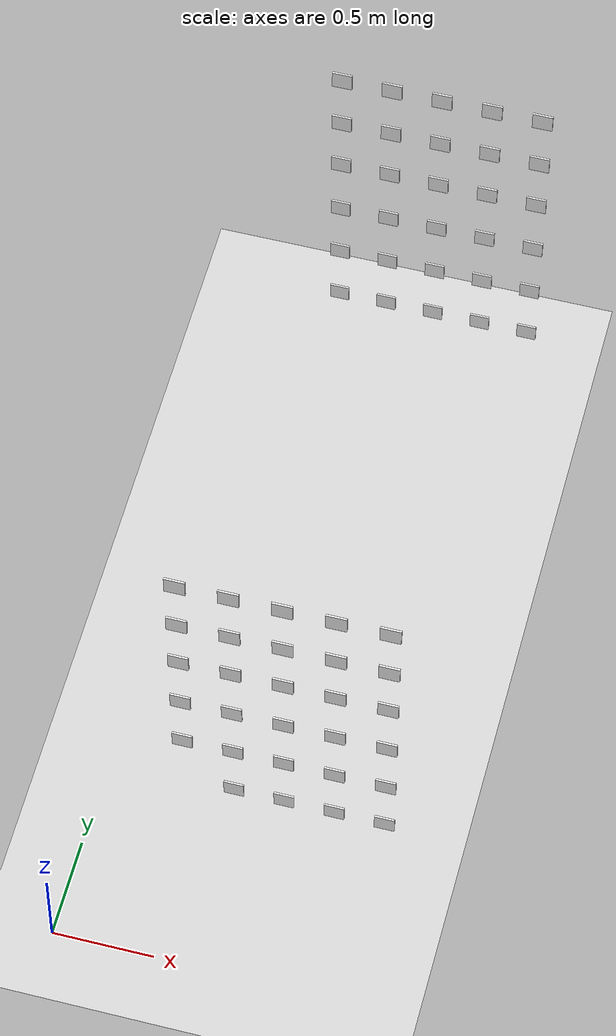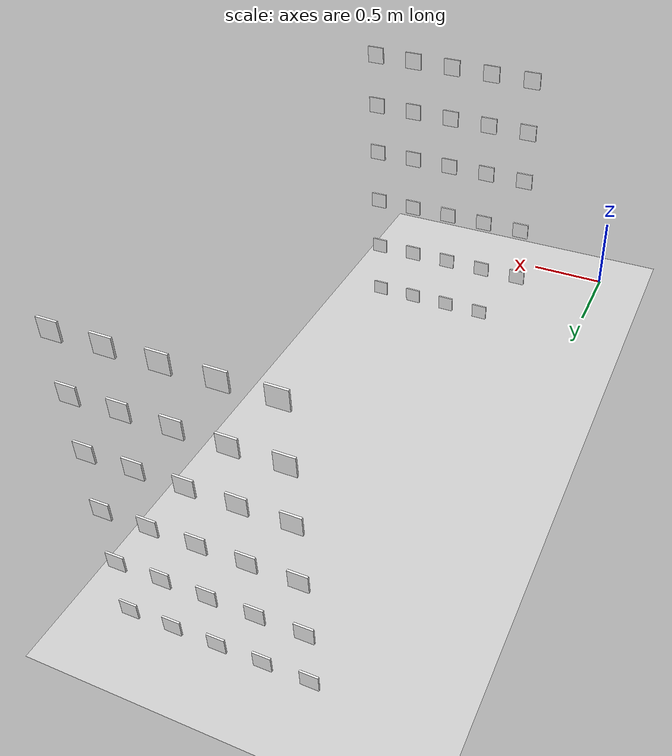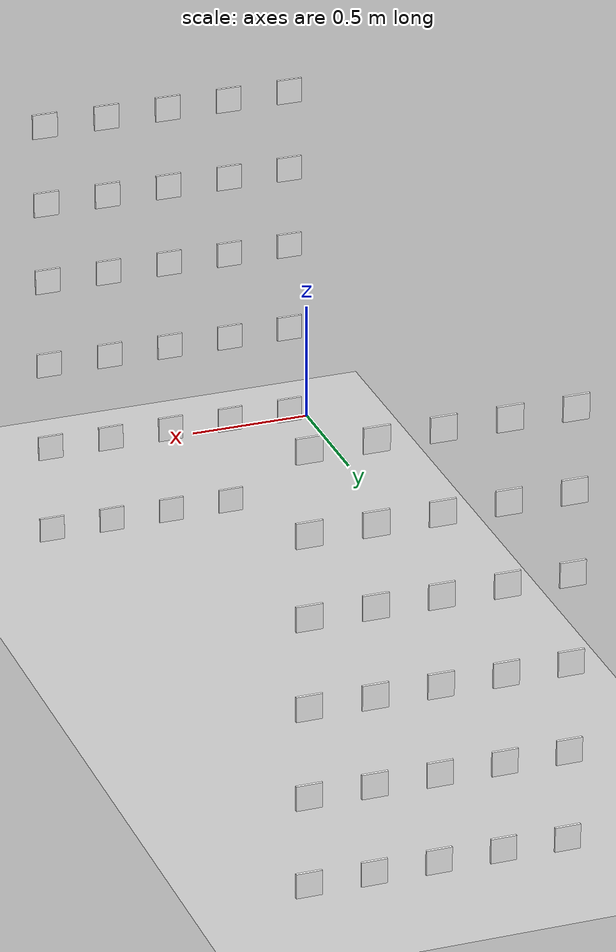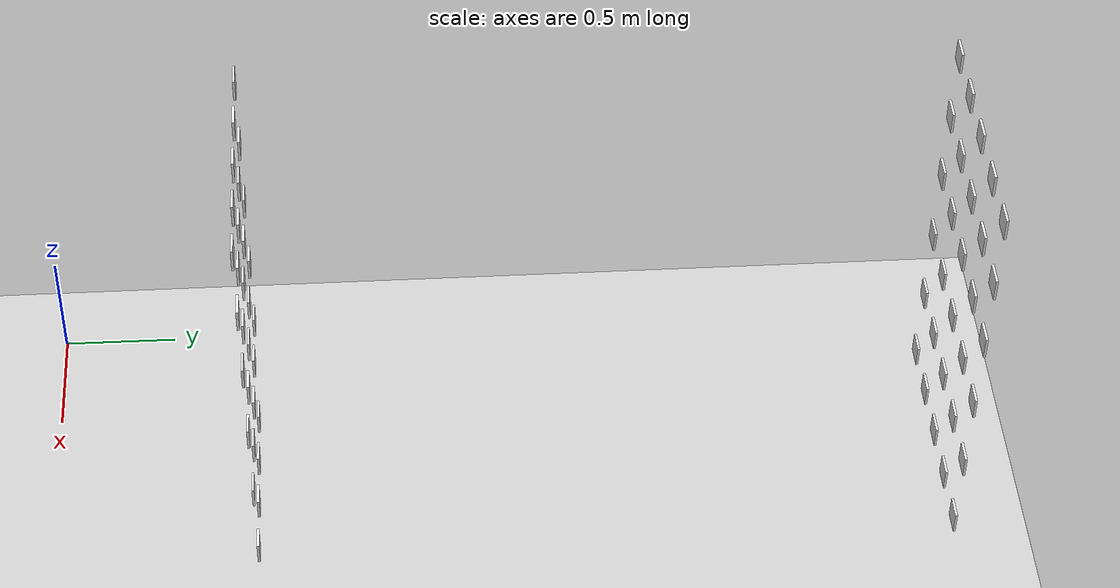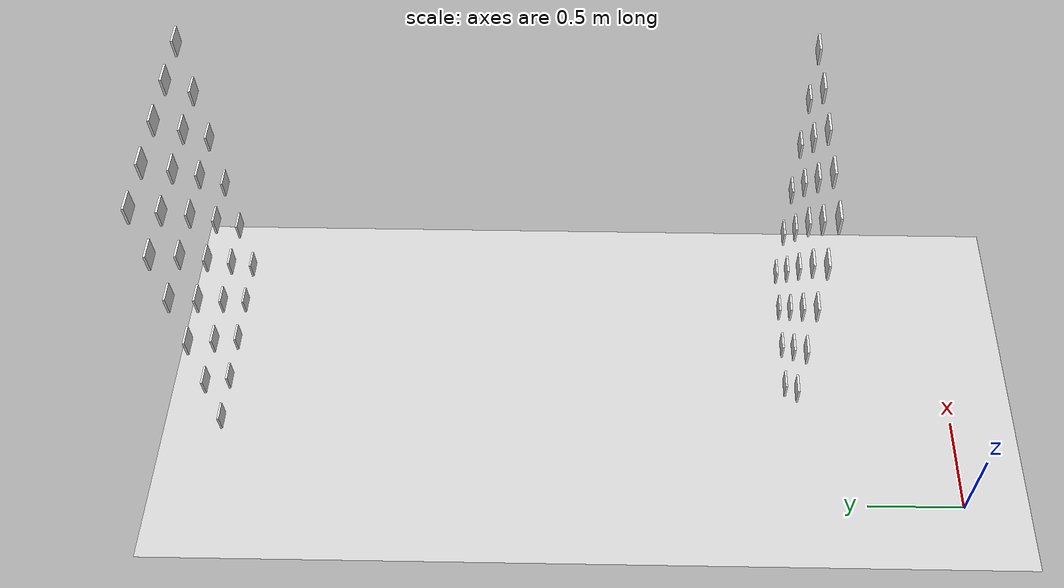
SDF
<sdf version="1.6">
 <world name="default">
  <include><uri>model://ground_plane</uri></include>
  <include><uri>model://sun</uri></include>
  <model name="stag_r1c2_l1_m1">
   <static>true</static>
   <pose>1.4 0.9 0.146 1.5708 0 0</pose>
   <link name="marker_link">
    <collision name="collision"><geometry><box><size>0.1 0.1 0.01</size></box></geometry></collision>
    <visual name="visual">
     <geometry><box><size>0.1 0.1 0.01</size></box></geometry>
     <material>
      <script>
       <uri>model://STag_marker/materials/scripts</uri>
       <uri>model://STag_marker/materials/textures</uri>
       <name>STagMarker/marker_02234</name>
      </script>
      <ambient>1 1 1 1</ambient>
      <diffuse>1 1 1 1</diffuse>
     </material>
     <pose>0 0 0.001 0 0 0</pose>
    </visual>
   </link>
  </model>
  <model name="stag_r1c2_l1_m2">
   <static>true</static>
   <pose>1.15 0.9 0.146 1.5708 0 0</pose>
   <link name="marker_link">
    <collision name="collision"><geometry><box><size>0.1 0.1 0.01</size></box></geometry></collision>
    <visual name="visual">
     <geometry><box><size>0.1 0.1 0.01</size></box></geometry>
     <material>
      <script>
       <uri>model://STag_marker/materials/scripts</uri>
       <uri>model://STag_marker/materials/textures</uri>
       <name>STagMarker/marker_02269</name>
      </script>
      <ambient>1 1 1 1</ambient>
      <diffuse>1 1 1 1</diffuse>
     </material>
     <pose>0 0 0.001 0 0 0</pose>
    </visual>
   </link>
  </model>
  <model name="stag_r1c2_l1_m3">
   <static>true</static>
   <pose>0.8999999999999999 0.9 0.146 1.5708 0 0</pose>
   <link name="marker_link">
    <collision name="collision"><geometry><box><size>0.1 0.1 0.01</size></box></geometry></collision>
    <visual name="visual">
     <geometry><box><size>0.1 0.1 0.01</size></box></geometry>
     <material>
      <script>
       <uri>model://STag_marker/materials/scripts</uri>
       <uri>model://STag_marker/materials/textures</uri>
       <name>STagMarker/marker_02275</name>
      </script>
      <ambient>1 1 1 1</ambient>
      <diffuse>1 1 1 1</diffuse>
     </material>
     <pose>0 0 0.001 0 0 0</pose>
    </visual>
   </link>
  </model>
  <model name="stag_r1c2_l1_m4">
   <static>true</static>
   <pose>0.6499999999999999 0.9 0.146 1.5708 0 0</pose>
   <link name="marker_link">
    <collision name="collision"><geometry><box><size>0.1 0.1 0.01</size></box></geometry></collision>
    <visual name="visual">
     <geometry><box><size>0.1 0.1 0.01</size></box></geometry>
     <material>
      <script>
       <uri>model://STag_marker/materials/scripts</uri>
       <uri>model://STag_marker/materials/textures</uri>
       <name>STagMarker/marker_02288</name>
      </script>
      <ambient>1 1 1 1</ambient>
      <diffuse>1 1 1 1</diffuse>
     </material>
     <pose>0 0 0.001 0 0 0</pose>
    </visual>
   </link>
  </model>
  <model name="stag_r1c2_l2_m1">
   <static>true</static>
   <pose>1.4 0.9 0.506 1.5708 0 0</pose>
   <link name="marker_link">
    <collision name="collision"><geometry><box><size>0.1 0.1 0.01</size></box></geometry></collision>
    <visual name="visual">
     <geometry><box><size>0.1 0.1 0.01</size></box></geometry>
     <material>
      <script>
       <uri>model://STag_marker/materials/scripts</uri>
       <uri>model://STag_marker/materials/textures</uri>
       <name>STagMarker/marker_02365</name>
      </script>
      <ambient>1 1 1 1</ambient>
      <diffuse>1 1 1 1</diffuse>
     </material>
     <pose>0 0 0.001 0 0 0</pose>
    </visual>
   </link>
  </model>
  <model name="stag_r1c2_l2_m2">
   <static>true</static>
   <pose>1.15 0.9 0.506 1.5708 0 0</pose>
   <link name="marker_link">
    <collision name="collision"><geometry><box><size>0.1 0.1 0.01</size></box></geometry></collision>
    <visual name="visual">
     <geometry><box><size>0.1 0.1 0.01</size></box></geometry>
     <material>
      <script>
       <uri>model://STag_marker/materials/scripts</uri>
       <uri>model://STag_marker/materials/textures</uri>
       <name>STagMarker/marker_00219</name>
      </script>
      <ambient>1 1 1 1</ambient>
      <diffuse>1 1 1 1</diffuse>
     </material>
     <pose>0 0 0.001 0 0 0</pose>
    </visual>
   </link>
  </model>
  <model name="stag_r1c2_l2_m3">
   <static>true</static>
   <pose>0.8999999999999999 0.9 0.506 1.5708 0 0</pose>
   <link name="marker_link">
    <collision name="collision"><geometry><box><size>0.1 0.1 0.01</size></box></geometry></collision>
    <visual name="visual">
     <geometry><box><size>0.1 0.1 0.01</size></box></geometry>
     <material>
      <script>
       <uri>model://STag_marker/materials/scripts</uri>
       <uri>model://STag_marker/materials/textures</uri>
       <name>STagMarker/marker_00261</name>
      </script>
      <ambient>1 1 1 1</ambient>
      <diffuse>1 1 1 1</diffuse>
     </material>
     <pose>0 0 0.001 0 0 0</pose>
    </visual>
   </link>
  </model>
  <model name="stag_r1c2_l2_m4">
   <static>true</static>
   <pose>0.6499999999999999 0.9 0.506 1.5708 0 0</pose>
   <link name="marker_link">
    <collision name="collision"><geometry><box><size>0.1 0.1 0.01</size></box></geometry></collision>
    <visual name="visual">
     <geometry><box><size>0.1 0.1 0.01</size></box></geometry>
     <material>
      <script>
       <uri>model://STag_marker/materials/scripts</uri>
       <uri>model://STag_marker/materials/textures</uri>
       <name>STagMarker/marker_00426</name>
      </script>
      <ambient>1 1 1 1</ambient>
      <diffuse>1 1 1 1</diffuse>
     </material>
     <pose>0 0 0.001 0 0 0</pose>
    </visual>
   </link>
  </model>
  <model name="stag_r1c2_l2_m5">
   <static>true</static>
   <pose>0.3999999999999999 0.9 0.506 1.5708 0 0</pose>
   <link name="marker_link">
    <collision name="collision"><geometry><box><size>0.1 0.1 0.01</size></box></geometry></collision>
    <visual name="visual">
     <geometry><box><size>0.1 0.1 0.01</size></box></geometry>
     <material>
      <script>
       <uri>model://STag_marker/materials/scripts</uri>
       <uri>model://STag_marker/materials/textures</uri>
       <name>STagMarker/marker_00519</name>
      </script>
      <ambient>1 1 1 1</ambient>
      <diffuse>1 1 1 1</diffuse>
     </material>
     <pose>0 0 0.001 0 0 0</pose>
    </visual>
   </link>
  </model>
  <model name="stag_r1c2_l3_m1">
   <static>true</static>
   <pose>1.4 0.9 0.867 1.5708 0 0</pose>
   <link name="marker_link">
    <collision name="collision"><geometry><box><size>0.1 0.1 0.01</size></box></geometry></collision>
    <visual name="visual">
     <geometry><box><size>0.1 0.1 0.01</size></box></geometry>
     <material>
      <script>
       <uri>model://STag_marker/materials/scripts</uri>
       <uri>model://STag_marker/materials/textures</uri>
       <name>STagMarker/marker_00525</name>
      </script>
      <ambient>1 1 1 1</ambient>
      <diffuse>1 1 1 1</diffuse>
     </material>
     <pose>0 0 0.001 0 0 0</pose>
    </visual>
   </link>
  </model>
  <model name="stag_r1c2_l3_m2">
   <static>true</static>
   <pose>1.15 0.9 0.867 1.5708 0 0</pose>
   <link name="marker_link">
    <collision name="collision"><geometry><box><size>0.1 0.1 0.01</size></box></geometry></collision>
    <visual name="visual">
     <geometry><box><size>0.1 0.1 0.01</size></box></geometry>
     <material>
      <script>
       <uri>model://STag_marker/materials/scripts</uri>
       <uri>model://STag_marker/materials/textures</uri>
       <name>STagMarker/marker_00526</name>
      </script>
      <ambient>1 1 1 1</ambient>
      <diffuse>1 1 1 1</diffuse>
     </material>
     <pose>0 0 0.001 0 0 0</pose>
    </visual>
   </link>
  </model>
  <model name="stag_r1c2_l3_m3">
   <static>true</static>
   <pose>0.8999999999999999 0.9 0.867 1.5708 0 0</pose>
   <link name="marker_link">
    <collision name="collision"><geometry><box><size>0.1 0.1 0.01</size></box></geometry></collision>
    <visual name="visual">
     <geometry><box><size>0.1 0.1 0.01</size></box></geometry>
     <material>
      <script>
       <uri>model://STag_marker/materials/scripts</uri>
       <uri>model://STag_marker/materials/textures</uri>
       <name>STagMarker/marker_00537</name>
      </script>
      <ambient>1 1 1 1</ambient>
      <diffuse>1 1 1 1</diffuse>
     </material>
     <pose>0 0 0.001 0 0 0</pose>
    </visual>
   </link>
  </model>
  <model name="stag_r1c2_l3_m4">
   <static>true</static>
   <pose>0.6499999999999999 0.9 0.867 1.5708 0 0</pose>
   <link name="marker_link">
    <collision name="collision"><geometry><box><size>0.1 0.1 0.01</size></box></geometry></collision>
    <visual name="visual">
     <geometry><box><size>0.1 0.1 0.01</size></box></geometry>
     <material>
      <script>
       <uri>model://STag_marker/materials/scripts</uri>
       <uri>model://STag_marker/materials/textures</uri>
       <name>STagMarker/marker_00563</name>
      </script>
      <ambient>1 1 1 1</ambient>
      <diffuse>1 1 1 1</diffuse>
     </material>
     <pose>0 0 0.001 0 0 0</pose>
    </visual>
   </link>
  </model>
  <model name="stag_r1c2_l3_m5">
   <static>true</static>
   <pose>0.3999999999999999 0.9 0.867 1.5708 0 0</pose>
   <link name="marker_link">
    <collision name="collision"><geometry><box><size>0.1 0.1 0.01</size></box></geometry></collision>
    <visual name="visual">
     <geometry><box><size>0.1 0.1 0.01</size></box></geometry>
     <material>
      <script>
       <uri>model://STag_marker/materials/scripts</uri>
       <uri>model://STag_marker/materials/textures</uri>
       <name>STagMarker/marker_00578</name>
      </script>
      <ambient>1 1 1 1</ambient>
      <diffuse>1 1 1 1</diffuse>
     </material>
     <pose>0 0 0.001 0 0 0</pose>
    </visual>
   </link>
  </model>
  <model name="stag_r1c2_l4_m1">
   <static>true</static>
   <pose>1.4 0.9 1.227 1.5708 0 0</pose>
   <link name="marker_link">
    <collision name="collision"><geometry><box><size>0.1 0.1 0.01</size></box></geometry></collision>
    <visual name="visual">
     <geometry><box><size>0.1 0.1 0.01</size></box></geometry>
     <material>
      <script>
       <uri>model://STag_marker/materials/scripts</uri>
       <uri>model://STag_marker/materials/textures</uri>
       <name>STagMarker/marker_00679</name>
      </script>
      <ambient>1 1 1 1</ambient>
      <diffuse>1 1 1 1</diffuse>
     </material>
     <pose>0 0 0.001 0 0 0</pose>
    </visual>
   </link>
  </model>
  <model name="stag_r1c2_l4_m2">
   <static>true</static>
   <pose>1.15 0.9 1.227 1.5708 0 0</pose>
   <link name="marker_link">
    <collision name="collision"><geometry><box><size>0.1 0.1 0.01</size></box></geometry></collision>
    <visual name="visual">
     <geometry><box><size>0.1 0.1 0.01</size></box></geometry>
     <material>
      <script>
       <uri>model://STag_marker/materials/scripts</uri>
       <uri>model://STag_marker/materials/textures</uri>
       <name>STagMarker/marker_00800</name>
      </script>
      <ambient>1 1 1 1</ambient>
      <diffuse>1 1 1 1</diffuse>
     </material>
     <pose>0 0 0.001 0 0 0</pose>
    </visual>
   </link>
  </model>
  <model name="stag_r1c2_l4_m3">
   <static>true</static>
   <pose>0.8999999999999999 0.9 1.227 1.5708 0 0</pose>
   <link name="marker_link">
    <collision name="collision"><geometry><box><size>0.1 0.1 0.01</size></box></geometry></collision>
    <visual name="visual">
     <geometry><box><size>0.1 0.1 0.01</size></box></geometry>
     <material>
      <script>
       <uri>model://STag_marker/materials/scripts</uri>
       <uri>model://STag_marker/materials/textures</uri>
       <name>STagMarker/marker_00848</name>
      </script>
      <ambient>1 1 1 1</ambient>
      <diffuse>1 1 1 1</diffuse>
     </material>
     <pose>0 0 0.001 0 0 0</pose>
    </visual>
   </link>
  </model>
  <model name="stag_r1c2_l4_m4">
   <static>true</static>
   <pose>0.6499999999999999 0.9 1.227 1.5708 0 0</pose>
   <link name="marker_link">
    <collision name="collision"><geometry><box><size>0.1 0.1 0.01</size></box></geometry></collision>
    <visual name="visual">
     <geometry><box><size>0.1 0.1 0.01</size></box></geometry>
     <material>
      <script>
       <uri>model://STag_marker/materials/scripts</uri>
       <uri>model://STag_marker/materials/textures</uri>
       <name>STagMarker/marker_01138</name>
      </script>
      <ambient>1 1 1 1</ambient>
      <diffuse>1 1 1 1</diffuse>
     </material>
     <pose>0 0 0.001 0 0 0</pose>
    </visual>
   </link>
  </model>
  <model name="stag_r1c2_l4_m5">
   <static>true</static>
   <pose>0.3999999999999999 0.9 1.227 1.5708 0 0</pose>
   <link name="marker_link">
    <collision name="collision"><geometry><box><size>0.1 0.1 0.01</size></box></geometry></collision>
    <visual name="visual">
     <geometry><box><size>0.1 0.1 0.01</size></box></geometry>
     <material>
      <script>
       <uri>model://STag_marker/materials/scripts</uri>
       <uri>model://STag_marker/materials/textures</uri>
       <name>STagMarker/marker_01181</name>
      </script>
      <ambient>1 1 1 1</ambient>
      <diffuse>1 1 1 1</diffuse>
     </material>
     <pose>0 0 0.001 0 0 0</pose>
    </visual>
   </link>
  </model>
  <model name="stag_r1c2_l5_m1">
   <static>true</static>
   <pose>1.4 0.9 1.556 1.5708 0 0</pose>
   <link name="marker_link">
    <collision name="collision"><geometry><box><size>0.1 0.1 0.01</size></box></geometry></collision>
    <visual name="visual">
     <geometry><box><size>0.1 0.1 0.01</size></box></geometry>
     <material>
      <script>
       <uri>model://STag_marker/materials/scripts</uri>
       <uri>model://STag_marker/materials/textures</uri>
       <name>STagMarker/marker_01311</name>
      </script>
      <ambient>1 1 1 1</ambient>
      <diffuse>1 1 1 1</diffuse>
     </material>
     <pose>0 0 0.001 0 0 0</pose>
    </visual>
   </link>
  </model>
  <model name="stag_r1c2_l5_m2">
   <static>true</static>
   <pose>1.15 0.9 1.556 1.5708 0 0</pose>
   <link name="marker_link">
    <collision name="collision"><geometry><box><size>0.1 0.1 0.01</size></box></geometry></collision>
    <visual name="visual">
     <geometry><box><size>0.1 0.1 0.01</size></box></geometry>
     <material>
      <script>
       <uri>model://STag_marker/materials/scripts</uri>
       <uri>model://STag_marker/materials/textures</uri>
       <name>STagMarker/marker_01391</name>
      </script>
      <ambient>1 1 1 1</ambient>
      <diffuse>1 1 1 1</diffuse>
     </material>
     <pose>0 0 0.001 0 0 0</pose>
    </visual>
   </link>
  </model>
  <model name="stag_r1c2_l5_m3">
   <static>true</static>
   <pose>0.8999999999999999 0.9 1.556 1.5708 0 0</pose>
   <link name="marker_link">
    <collision name="collision"><geometry><box><size>0.1 0.1 0.01</size></box></geometry></collision>
    <visual name="visual">
     <geometry><box><size>0.1 0.1 0.01</size></box></geometry>
     <material>
      <script>
       <uri>model://STag_marker/materials/scripts</uri>
       <uri>model://STag_marker/materials/textures</uri>
       <name>STagMarker/marker_01396</name>
      </script>
      <ambient>1 1 1 1</ambient>
      <diffuse>1 1 1 1</diffuse>
     </material>
     <pose>0 0 0.001 0 0 0</pose>
    </visual>
   </link>
  </model>
  <model name="stag_r1c2_l5_m4">
   <static>true</static>
   <pose>0.6499999999999999 0.9 1.556 1.5708 0 0</pose>
   <link name="marker_link">
    <collision name="collision"><geometry><box><size>0.1 0.1 0.01</size></box></geometry></collision>
    <visual name="visual">
     <geometry><box><size>0.1 0.1 0.01</size></box></geometry>
     <material>
      <script>
       <uri>model://STag_marker/materials/scripts</uri>
       <uri>model://STag_marker/materials/textures</uri>
       <name>STagMarker/marker_01451</name>
      </script>
      <ambient>1 1 1 1</ambient>
      <diffuse>1 1 1 1</diffuse>
     </material>
     <pose>0 0 0.001 0 0 0</pose>
    </visual>
   </link>
  </model>
  <model name="stag_r1c2_l5_m5">
   <static>true</static>
   <pose>0.3999999999999999 0.9 1.556 1.5708 0 0</pose>
   <link name="marker_link">
    <collision name="collision"><geometry><box><size>0.1 0.1 0.01</size></box></geometry></collision>
    <visual name="visual">
     <geometry><box><size>0.1 0.1 0.01</size></box></geometry>
     <material>
      <script>
       <uri>model://STag_marker/materials/scripts</uri>
       <uri>model://STag_marker/materials/textures</uri>
       <name>STagMarker/marker_01509</name>
      </script>
      <ambient>1 1 1 1</ambient>
      <diffuse>1 1 1 1</diffuse>
     </material>
     <pose>0 0 0.001 0 0 0</pose>
    </visual>
   </link>
  </model>
  <model name="stag_r1c2_l6_m1">
   <static>true</static>
   <pose>1.4 0.9 1.886 1.5708 0 0</pose>
   <link name="marker_link">
    <collision name="collision"><geometry><box><size>0.1 0.1 0.01</size></box></geometry></collision>
    <visual name="visual">
     <geometry><box><size>0.1 0.1 0.01</size></box></geometry>
     <material>
      <script>
       <uri>model://STag_marker/materials/scripts</uri>
       <uri>model://STag_marker/materials/textures</uri>
       <name>STagMarker/marker_01579</name>
      </script>
      <ambient>1 1 1 1</ambient>
      <diffuse>1 1 1 1</diffuse>
     </material>
     <pose>0 0 0.001 0 0 0</pose>
    </visual>
   </link>
  </model>
  <model name="stag_r1c2_l6_m2">
   <static>true</static>
   <pose>1.15 0.9 1.886 1.5708 0 0</pose>
   <link name="marker_link">
    <collision name="collision"><geometry><box><size>0.1 0.1 0.01</size></box></geometry></collision>
    <visual name="visual">
     <geometry><box><size>0.1 0.1 0.01</size></box></geometry>
     <material>
      <script>
       <uri>model://STag_marker/materials/scripts</uri>
       <uri>model://STag_marker/materials/textures</uri>
       <name>STagMarker/marker_01603</name>
      </script>
      <ambient>1 1 1 1</ambient>
      <diffuse>1 1 1 1</diffuse>
     </material>
     <pose>0 0 0.001 0 0 0</pose>
    </visual>
   </link>
  </model>
  <model name="stag_r1c2_l6_m3">
   <static>true</static>
   <pose>0.8999999999999999 0.9 1.886 1.5708 0 0</pose>
   <link name="marker_link">
    <collision name="collision"><geometry><box><size>0.1 0.1 0.01</size></box></geometry></collision>
    <visual name="visual">
     <geometry><box><size>0.1 0.1 0.01</size></box></geometry>
     <material>
      <script>
       <uri>model://STag_marker/materials/scripts</uri>
       <uri>model://STag_marker/materials/textures</uri>
       <name>STagMarker/marker_01630</name>
      </script>
      <ambient>1 1 1 1</ambient>
      <diffuse>1 1 1 1</diffuse>
     </material>
     <pose>0 0 0.001 0 0 0</pose>
    </visual>
   </link>
  </model>
  <model name="stag_r1c2_l6_m4">
   <static>true</static>
   <pose>0.6499999999999999 0.9 1.886 1.5708 0 0</pose>
   <link name="marker_link">
    <collision name="collision"><geometry><box><size>0.1 0.1 0.01</size></box></geometry></collision>
    <visual name="visual">
     <geometry><box><size>0.1 0.1 0.01</size></box></geometry>
     <material>
      <script>
       <uri>model://STag_marker/materials/scripts</uri>
       <uri>model://STag_marker/materials/textures</uri>
       <name>STagMarker/marker_01654</name>
      </script>
      <ambient>1 1 1 1</ambient>
      <diffuse>1 1 1 1</diffuse>
     </material>
     <pose>0 0 0.001 0 0 0</pose>
    </visual>
   </link>
  </model>
  <model name="stag_r1c2_l6_m5">
   <static>true</static>
   <pose>0.3999999999999999 0.9 1.886 1.5708 0 0</pose>
   <link name="marker_link">
    <collision name="collision"><geometry><box><size>0.1 0.1 0.01</size></box></geometry></collision>
    <visual name="visual">
     <geometry><box><size>0.1 0.1 0.01</size></box></geometry>
     <material>
      <script>
       <uri>model://STag_marker/materials/scripts</uri>
       <uri>model://STag_marker/materials/textures</uri>
       <name>STagMarker/marker_01690</name>
      </script>
      <ambient>1 1 1 1</ambient>
      <diffuse>1 1 1 1</diffuse>
     </material>
     <pose>0 0 0.001 0 0 0</pose>
    </visual>
   </link>
  </model>
  <model name="stag_r2c2_l1_m1">
   <static>true</static>
   <pose>1.4 3.9 0.146 1.5708 0 0</pose>
   <link name="marker_link">
    <collision name="collision"><geometry><box><size>0.1 0.1 0.01</size></box></geometry></collision>
    <visual name="visual">
     <geometry><box><size>0.1 0.1 0.01</size></box></geometry>
     <material>
      <script>
       <uri>model://STag_marker/materials/scripts</uri>
       <uri>model://STag_marker/materials/textures</uri>
       <name>STagMarker/marker_01138</name>
      </script>
      <ambient>1 1 1 1</ambient>
      <diffuse>1 1 1 1</diffuse>
     </material>
     <pose>0 0 0.001 0 0 0</pose>
    </visual>
   </link>
  </model>
  <model name="stag_r2c2_l1_m2">
   <static>true</static>
   <pose>1.15 3.9 0.146 1.5708 0 0</pose>
   <link name="marker_link">
    <collision name="collision"><geometry><box><size>0.1 0.1 0.01</size></box></geometry></collision>
    <visual name="visual">
     <geometry><box><size>0.1 0.1 0.01</size></box></geometry>
     <material>
      <script>
       <uri>model://STag_marker/materials/scripts</uri>
       <uri>model://STag_marker/materials/textures</uri>
       <name>STagMarker/marker_01181</name>
      </script>
      <ambient>1 1 1 1</ambient>
      <diffuse>1 1 1 1</diffuse>
     </material>
     <pose>0 0 0.001 0 0 0</pose>
    </visual>
   </link>
  </model>
  <model name="stag_r2c2_l1_m3">
   <static>true</static>
   <pose>0.8999999999999999 3.9 0.146 1.5708 0 0</pose>
   <link name="marker_link">
    <collision name="collision"><geometry><box><size>0.1 0.1 0.01</size></box></geometry></collision>
    <visual name="visual">
     <geometry><box><size>0.1 0.1 0.01</size></box></geometry>
     <material>
      <script>
       <uri>model://STag_marker/materials/scripts</uri>
       <uri>model://STag_marker/materials/textures</uri>
       <name>STagMarker/marker_01311</name>
      </script>
      <ambient>1 1 1 1</ambient>
      <diffuse>1 1 1 1</diffuse>
     </material>
     <pose>0 0 0.001 0 0 0</pose>
    </visual>
   </link>
  </model>
  <model name="stag_r2c2_l1_m4">
   <static>true</static>
   <pose>0.6499999999999999 3.9 0.146 1.5708 0 0</pose>
   <link name="marker_link">
    <collision name="collision"><geometry><box><size>0.1 0.1 0.01</size></box></geometry></collision>
    <visual name="visual">
     <geometry><box><size>0.1 0.1 0.01</size></box></geometry>
     <material>
      <script>
       <uri>model://STag_marker/materials/scripts</uri>
       <uri>model://STag_marker/materials/textures</uri>
       <name>STagMarker/marker_01391</name>
      </script>
      <ambient>1 1 1 1</ambient>
      <diffuse>1 1 1 1</diffuse>
     </material>
     <pose>0 0 0.001 0 0 0</pose>
    </visual>
   </link>
  </model>
  <model name="stag_r2c2_l1_m5">
   <static>true</static>
   <pose>0.3999999999999999 3.9 0.146 1.5708 0 0</pose>
   <link name="marker_link">
    <collision name="collision"><geometry><box><size>0.1 0.1 0.01</size></box></geometry></collision>
    <visual name="visual">
     <geometry><box><size>0.1 0.1 0.01</size></box></geometry>
     <material>
      <script>
       <uri>model://STag_marker/materials/scripts</uri>
       <uri>model://STag_marker/materials/textures</uri>
       <name>STagMarker/marker_01396</name>
      </script>
      <ambient>1 1 1 1</ambient>
      <diffuse>1 1 1 1</diffuse>
     </material>
     <pose>0 0 0.001 0 0 0</pose>
    </visual>
   </link>
  </model>
  <model name="stag_r2c2_l2_m1">
   <static>true</static>
   <pose>1.4 3.9 0.506 1.5708 0 0</pose>
   <link name="marker_link">
    <collision name="collision"><geometry><box><size>0.1 0.1 0.01</size></box></geometry></collision>
    <visual name="visual">
     <geometry><box><size>0.1 0.1 0.01</size></box></geometry>
     <material>
      <script>
       <uri>model://STag_marker/materials/scripts</uri>
       <uri>model://STag_marker/materials/textures</uri>
       <name>STagMarker/marker_01451</name>
      </script>
      <ambient>1 1 1 1</ambient>
      <diffuse>1 1 1 1</diffuse>
     </material>
     <pose>0 0 0.001 0 0 0</pose>
    </visual>
   </link>
  </model>
  <model name="stag_r2c2_l2_m2">
   <static>true</static>
   <pose>1.15 3.9 0.506 1.5708 0 0</pose>
   <link name="marker_link">
    <collision name="collision"><geometry><box><size>0.1 0.1 0.01</size></box></geometry></collision>
    <visual name="visual">
     <geometry><box><size>0.1 0.1 0.01</size></box></geometry>
     <material>
      <script>
       <uri>model://STag_marker/materials/scripts</uri>
       <uri>model://STag_marker/materials/textures</uri>
       <name>STagMarker/marker_01509</name>
      </script>
      <ambient>1 1 1 1</ambient>
      <diffuse>1 1 1 1</diffuse>
     </material>
     <pose>0 0 0.001 0 0 0</pose>
    </visual>
   </link>
  </model>
  <model name="stag_r2c2_l2_m3">
   <static>true</static>
   <pose>0.8999999999999999 3.9 0.506 1.5708 0 0</pose>
   <link name="marker_link">
    <collision name="collision"><geometry><box><size>0.1 0.1 0.01</size></box></geometry></collision>
    <visual name="visual">
     <geometry><box><size>0.1 0.1 0.01</size></box></geometry>
     <material>
      <script>
       <uri>model://STag_marker/materials/scripts</uri>
       <uri>model://STag_marker/materials/textures</uri>
       <name>STagMarker/marker_01579</name>
      </script>
      <ambient>1 1 1 1</ambient>
      <diffuse>1 1 1 1</diffuse>
     </material>
     <pose>0 0 0.001 0 0 0</pose>
    </visual>
   </link>
  </model>
  <model name="stag_r2c2_l2_m4">
   <static>true</static>
   <pose>0.6499999999999999 3.9 0.506 1.5708 0 0</pose>
   <link name="marker_link">
    <collision name="collision"><geometry><box><size>0.1 0.1 0.01</size></box></geometry></collision>
    <visual name="visual">
     <geometry><box><size>0.1 0.1 0.01</size></box></geometry>
     <material>
      <script>
       <uri>model://STag_marker/materials/scripts</uri>
       <uri>model://STag_marker/materials/textures</uri>
       <name>STagMarker/marker_01603</name>
      </script>
      <ambient>1 1 1 1</ambient>
      <diffuse>1 1 1 1</diffuse>
     </material>
     <pose>0 0 0.001 0 0 0</pose>
    </visual>
   </link>
  </model>
  <model name="stag_r2c2_l2_m5">
   <static>true</static>
   <pose>0.3999999999999999 3.9 0.506 1.5708 0 0</pose>
   <link name="marker_link">
    <collision name="collision"><geometry><box><size>0.1 0.1 0.01</size></box></geometry></collision>
    <visual name="visual">
     <geometry><box><size>0.1 0.1 0.01</size></box></geometry>
     <material>
      <script>
       <uri>model://STag_marker/materials/scripts</uri>
       <uri>model://STag_marker/materials/textures</uri>
       <name>STagMarker/marker_01630</name>
      </script>
      <ambient>1 1 1 1</ambient>
      <diffuse>1 1 1 1</diffuse>
     </material>
     <pose>0 0 0.001 0 0 0</pose>
    </visual>
   </link>
  </model>
  <model name="stag_r2c2_l3_m1">
   <static>true</static>
   <pose>1.4 3.9 0.867 1.5708 0 0</pose>
   <link name="marker_link">
    <collision name="collision"><geometry><box><size>0.1 0.1 0.01</size></box></geometry></collision>
    <visual name="visual">
     <geometry><box><size>0.1 0.1 0.01</size></box></geometry>
     <material>
      <script>
       <uri>model://STag_marker/materials/scripts</uri>
       <uri>model://STag_marker/materials/textures</uri>
       <name>STagMarker/marker_01654</name>
      </script>
      <ambient>1 1 1 1</ambient>
      <diffuse>1 1 1 1</diffuse>
     </material>
     <pose>0 0 0.001 0 0 0</pose>
    </visual>
   </link>
  </model>
  <model name="stag_r2c2_l3_m2">
   <static>true</static>
   <pose>1.15 3.9 0.867 1.5708 0 0</pose>
   <link name="marker_link">
    <collision name="collision"><geometry><box><size>0.1 0.1 0.01</size></box></geometry></collision>
    <visual name="visual">
     <geometry><box><size>0.1 0.1 0.01</size></box></geometry>
     <material>
      <script>
       <uri>model://STag_marker/materials/scripts</uri>
       <uri>model://STag_marker/materials/textures</uri>
       <name>STagMarker/marker_01690</name>
      </script>
      <ambient>1 1 1 1</ambient>
      <diffuse>1 1 1 1</diffuse>
     </material>
     <pose>0 0 0.001 0 0 0</pose>
    </visual>
   </link>
  </model>
  <model name="stag_r2c2_l3_m3">
   <static>true</static>
   <pose>0.8999999999999999 3.9 0.867 1.5708 0 0</pose>
   <link name="marker_link">
    <collision name="collision"><geometry><box><size>0.1 0.1 0.01</size></box></geometry></collision>
    <visual name="visual">
     <geometry><box><size>0.1 0.1 0.01</size></box></geometry>
     <material>
      <script>
       <uri>model://STag_marker/materials/scripts</uri>
       <uri>model://STag_marker/materials/textures</uri>
       <name>STagMarker/marker_01824</name>
      </script>
      <ambient>1 1 1 1</ambient>
      <diffuse>1 1 1 1</diffuse>
     </material>
     <pose>0 0 0.001 0 0 0</pose>
    </visual>
   </link>
  </model>
  <model name="stag_r2c2_l3_m4">
   <static>true</static>
   <pose>0.6499999999999999 3.9 0.867 1.5708 0 0</pose>
   <link name="marker_link">
    <collision name="collision"><geometry><box><size>0.1 0.1 0.01</size></box></geometry></collision>
    <visual name="visual">
     <geometry><box><size>0.1 0.1 0.01</size></box></geometry>
     <material>
      <script>
       <uri>model://STag_marker/materials/scripts</uri>
       <uri>model://STag_marker/materials/textures</uri>
       <name>STagMarker/marker_01862</name>
      </script>
      <ambient>1 1 1 1</ambient>
      <diffuse>1 1 1 1</diffuse>
     </material>
     <pose>0 0 0.001 0 0 0</pose>
    </visual>
   </link>
  </model>
  <model name="stag_r2c2_l3_m5">
   <static>true</static>
   <pose>0.3999999999999999 3.9 0.867 1.5708 0 0</pose>
   <link name="marker_link">
    <collision name="collision"><geometry><box><size>0.1 0.1 0.01</size></box></geometry></collision>
    <visual name="visual">
     <geometry><box><size>0.1 0.1 0.01</size></box></geometry>
     <material>
      <script>
       <uri>model://STag_marker/materials/scripts</uri>
       <uri>model://STag_marker/materials/textures</uri>
       <name>STagMarker/marker_01928</name>
      </script>
      <ambient>1 1 1 1</ambient>
      <diffuse>1 1 1 1</diffuse>
     </material>
     <pose>0 0 0.001 0 0 0</pose>
    </visual>
   </link>
  </model>
  <model name="stag_r2c2_l4_m1">
   <static>true</static>
   <pose>1.4 3.9 1.227 1.5708 0 0</pose>
   <link name="marker_link">
    <collision name="collision"><geometry><box><size>0.1 0.1 0.01</size></box></geometry></collision>
    <visual name="visual">
     <geometry><box><size>0.1 0.1 0.01</size></box></geometry>
     <material>
      <script>
       <uri>model://STag_marker/materials/scripts</uri>
       <uri>model://STag_marker/materials/textures</uri>
       <name>STagMarker/marker_01999</name>
      </script>
      <ambient>1 1 1 1</ambient>
      <diffuse>1 1 1 1</diffuse>
     </material>
     <pose>0 0 0.001 0 0 0</pose>
    </visual>
   </link>
  </model>
  <model name="stag_r2c2_l4_m2">
   <static>true</static>
   <pose>1.15 3.9 1.227 1.5708 0 0</pose>
   <link name="marker_link">
    <collision name="collision"><geometry><box><size>0.1 0.1 0.01</size></box></geometry></collision>
    <visual name="visual">
     <geometry><box><size>0.1 0.1 0.01</size></box></geometry>
     <material>
      <script>
       <uri>model://STag_marker/materials/scripts</uri>
       <uri>model://STag_marker/materials/textures</uri>
       <name>STagMarker/marker_02027</name>
      </script>
      <ambient>1 1 1 1</ambient>
      <diffuse>1 1 1 1</diffuse>
     </material>
     <pose>0 0 0.001 0 0 0</pose>
    </visual>
   </link>
  </model>
  <model name="stag_r2c2_l4_m3">
   <static>true</static>
   <pose>0.8999999999999999 3.9 1.227 1.5708 0 0</pose>
   <link name="marker_link">
    <collision name="collision"><geometry><box><size>0.1 0.1 0.01</size></box></geometry></collision>
    <visual name="visual">
     <geometry><box><size>0.1 0.1 0.01</size></box></geometry>
     <material>
      <script>
       <uri>model://STag_marker/materials/scripts</uri>
       <uri>model://STag_marker/materials/textures</uri>
       <name>STagMarker/marker_02149</name>
      </script>
      <ambient>1 1 1 1</ambient>
      <diffuse>1 1 1 1</diffuse>
     </material>
     <pose>0 0 0.001 0 0 0</pose>
    </visual>
   </link>
  </model>
  <model name="stag_r2c2_l4_m4">
   <static>true</static>
   <pose>0.6499999999999999 3.9 1.227 1.5708 0 0</pose>
   <link name="marker_link">
    <collision name="collision"><geometry><box><size>0.1 0.1 0.01</size></box></geometry></collision>
    <visual name="visual">
     <geometry><box><size>0.1 0.1 0.01</size></box></geometry>
     <material>
      <script>
       <uri>model://STag_marker/materials/scripts</uri>
       <uri>model://STag_marker/materials/textures</uri>
       <name>STagMarker/marker_02234</name>
      </script>
      <ambient>1 1 1 1</ambient>
      <diffuse>1 1 1 1</diffuse>
     </material>
     <pose>0 0 0.001 0 0 0</pose>
    </visual>
   </link>
  </model>
  <model name="stag_r2c2_l4_m5">
   <static>true</static>
   <pose>0.3999999999999999 3.9 1.227 1.5708 0 0</pose>
   <link name="marker_link">
    <collision name="collision"><geometry><box><size>0.1 0.1 0.01</size></box></geometry></collision>
    <visual name="visual">
     <geometry><box><size>0.1 0.1 0.01</size></box></geometry>
     <material>
      <script>
       <uri>model://STag_marker/materials/scripts</uri>
       <uri>model://STag_marker/materials/textures</uri>
       <name>STagMarker/marker_02269</name>
      </script>
      <ambient>1 1 1 1</ambient>
      <diffuse>1 1 1 1</diffuse>
     </material>
     <pose>0 0 0.001 0 0 0</pose>
    </visual>
   </link>
  </model>
  <model name="stag_r2c2_l5_m1">
   <static>true</static>
   <pose>1.4 3.9 1.556 1.5708 0 0</pose>
   <link name="marker_link">
    <collision name="collision"><geometry><box><size>0.1 0.1 0.01</size></box></geometry></collision>
    <visual name="visual">
     <geometry><box><size>0.1 0.1 0.01</size></box></geometry>
     <material>
      <script>
       <uri>model://STag_marker/materials/scripts</uri>
       <uri>model://STag_marker/materials/textures</uri>
       <name>STagMarker/marker_02275</name>
      </script>
      <ambient>1 1 1 1</ambient>
      <diffuse>1 1 1 1</diffuse>
     </material>
     <pose>0 0 0.001 0 0 0</pose>
    </visual>
   </link>
  </model>
  <model name="stag_r2c2_l5_m2">
   <static>true</static>
   <pose>1.15 3.9 1.556 1.5708 0 0</pose>
   <link name="marker_link">
    <collision name="collision"><geometry><box><size>0.1 0.1 0.01</size></box></geometry></collision>
    <visual name="visual">
     <geometry><box><size>0.1 0.1 0.01</size></box></geometry>
     <material>
      <script>
       <uri>model://STag_marker/materials/scripts</uri>
       <uri>model://STag_marker/materials/textures</uri>
       <name>STagMarker/marker_02288</name>
      </script>
      <ambient>1 1 1 1</ambient>
      <diffuse>1 1 1 1</diffuse>
     </material>
     <pose>0 0 0.001 0 0 0</pose>
    </visual>
   </link>
  </model>
  <model name="stag_r2c2_l5_m3">
   <static>true</static>
   <pose>0.8999999999999999 3.9 1.556 1.5708 0 0</pose>
   <link name="marker_link">
    <collision name="collision"><geometry><box><size>0.1 0.1 0.01</size></box></geometry></collision>
    <visual name="visual">
     <geometry><box><size>0.1 0.1 0.01</size></box></geometry>
     <material>
      <script>
       <uri>model://STag_marker/materials/scripts</uri>
       <uri>model://STag_marker/materials/textures</uri>
       <name>STagMarker/marker_02346</name>
      </script>
      <ambient>1 1 1 1</ambient>
      <diffuse>1 1 1 1</diffuse>
     </material>
     <pose>0 0 0.001 0 0 0</pose>
    </visual>
   </link>
  </model>
  <model name="stag_r2c2_l5_m4">
   <static>true</static>
   <pose>0.6499999999999999 3.9 1.556 1.5708 0 0</pose>
   <link name="marker_link">
    <collision name="collision"><geometry><box><size>0.1 0.1 0.01</size></box></geometry></collision>
    <visual name="visual">
     <geometry><box><size>0.1 0.1 0.01</size></box></geometry>
     <material>
      <script>
       <uri>model://STag_marker/materials/scripts</uri>
       <uri>model://STag_marker/materials/textures</uri>
       <name>STagMarker/marker_02365</name>
      </script>
      <ambient>1 1 1 1</ambient>
      <diffuse>1 1 1 1</diffuse>
     </material>
     <pose>0 0 0.001 0 0 0</pose>
    </visual>
   </link>
  </model>
  <model name="stag_r2c2_l5_m5">
   <static>true</static>
   <pose>0.3999999999999999 3.9 1.556 1.5708 0 0</pose>
   <link name="marker_link">
    <collision name="collision"><geometry><box><size>0.1 0.1 0.01</size></box></geometry></collision>
    <visual name="visual">
     <geometry><box><size>0.1 0.1 0.01</size></box></geometry>
     <material>
      <script>
       <uri>model://STag_marker/materials/scripts</uri>
       <uri>model://STag_marker/materials/textures</uri>
       <name>STagMarker/marker_00219</name>
      </script>
      <ambient>1 1 1 1</ambient>
      <diffuse>1 1 1 1</diffuse>
     </material>
     <pose>0 0 0.001 0 0 0</pose>
    </visual>
   </link>
  </model>
  <model name="stag_r2c2_l6_m1">
   <static>true</static>
   <pose>1.4 3.9 1.886 1.5708 0 0</pose>
   <link name="marker_link">
    <collision name="collision"><geometry><box><size>0.1 0.1 0.01</size></box></geometry></collision>
    <visual name="visual">
     <geometry><box><size>0.1 0.1 0.01</size></box></geometry>
     <material>
      <script>
       <uri>model://STag_marker/materials/scripts</uri>
       <uri>model://STag_marker/materials/textures</uri>
       <name>STagMarker/marker_00261</name>
      </script>
      <ambient>1 1 1 1</ambient>
      <diffuse>1 1 1 1</diffuse>
     </material>
     <pose>0 0 0.001 0 0 0</pose>
    </visual>
   </link>
  </model>
  <model name="stag_r2c2_l6_m2">
   <static>true</static>
   <pose>1.15 3.9 1.886 1.5708 0 0</pose>
   <link name="marker_link">
    <collision name="collision"><geometry><box><size>0.1 0.1 0.01</size></box></geometry></collision>
    <visual name="visual">
     <geometry><box><size>0.1 0.1 0.01</size></box></geometry>
     <material>
      <script>
       <uri>model://STag_marker/materials/scripts</uri>
       <uri>model://STag_marker/materials/textures</uri>
       <name>STagMarker/marker_00426</name>
      </script>
      <ambient>1 1 1 1</ambient>
      <diffuse>1 1 1 1</diffuse>
     </material>
     <pose>0 0 0.001 0 0 0</pose>
    </visual>
   </link>
  </model>
  <model name="stag_r2c2_l6_m3">
   <static>true</static>
   <pose>0.8999999999999999 3.9 1.886 1.5708 0 0</pose>
   <link name="marker_link">
    <collision name="collision"><geometry><box><size>0.1 0.1 0.01</size></box></geometry></collision>
    <visual name="visual">
     <geometry><box><size>0.1 0.1 0.01</size></box></geometry>
     <material>
      <script>
       <uri>model://STag_marker/materials/scripts</uri>
       <uri>model://STag_marker/materials/textures</uri>
       <name>STagMarker/marker_00519</name>
      </script>
      <ambient>1 1 1 1</ambient>
      <diffuse>1 1 1 1</diffuse>
     </material>
     <pose>0 0 0.001 0 0 0</pose>
    </visual>
   </link>
  </model>
  <model name="stag_r2c2_l6_m4">
   <static>true</static>
   <pose>0.6499999999999999 3.9 1.886 1.5708 0 0</pose>
   <link name="marker_link">
    <collision name="collision"><geometry><box><size>0.1 0.1 0.01</size></box></geometry></collision>
    <visual name="visual">
     <geometry><box><size>0.1 0.1 0.01</size></box></geometry>
     <material>
      <script>
       <uri>model://STag_marker/materials/scripts</uri>
       <uri>model://STag_marker/materials/textures</uri>
       <name>STagMarker/marker_00525</name>
      </script>
      <ambient>1 1 1 1</ambient>
      <diffuse>1 1 1 1</diffuse>
     </material>
     <pose>0 0 0.001 0 0 0</pose>
    </visual>
   </link>
  </model>
  <model name="stag_r2c2_l6_m5">
   <static>true</static>
   <pose>0.3999999999999999 3.9 1.886 1.5708 0 0</pose>
   <link name="marker_link">
    <collision name="collision"><geometry><box><size>0.1 0.1 0.01</size></box></geometry></collision>
    <visual name="visual">
     <geometry><box><size>0.1 0.1 0.01</size></box></geometry>
     <material>
      <script>
       <uri>model://STag_marker/materials/scripts</uri>
       <uri>model://STag_marker/materials/textures</uri>
       <name>STagMarker/marker_00526</name>
      </script>
      <ambient>1 1 1 1</ambient>
      <diffuse>1 1 1 1</diffuse>
     </material>
     <pose>0 0 0.001 0 0 0</pose>
    </visual>
   </link>
  </model>
 </world>
</sdf>
